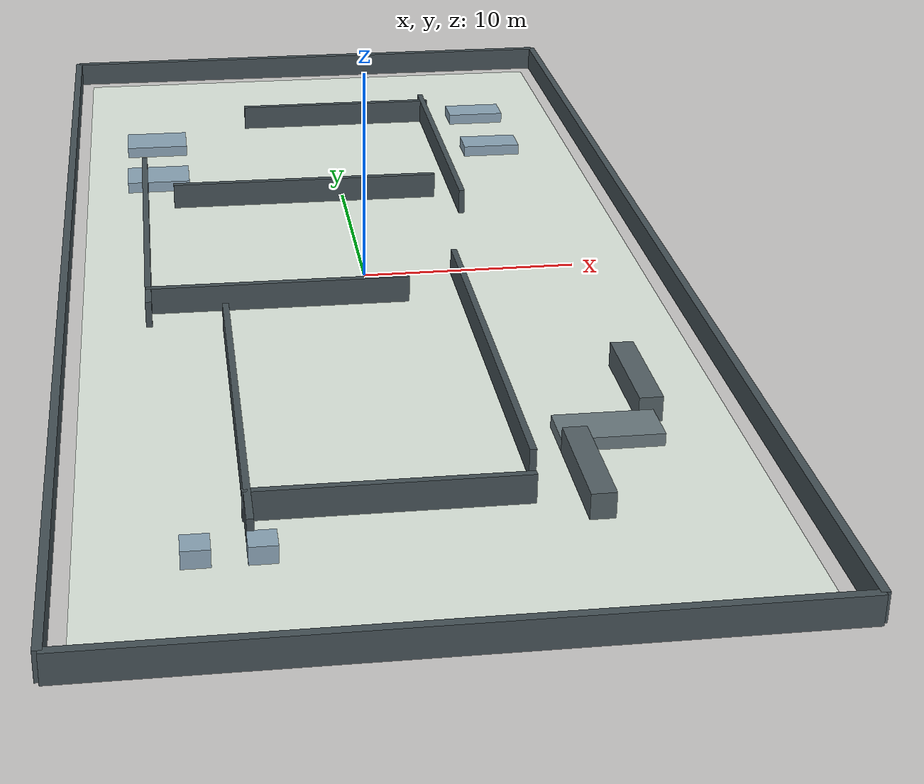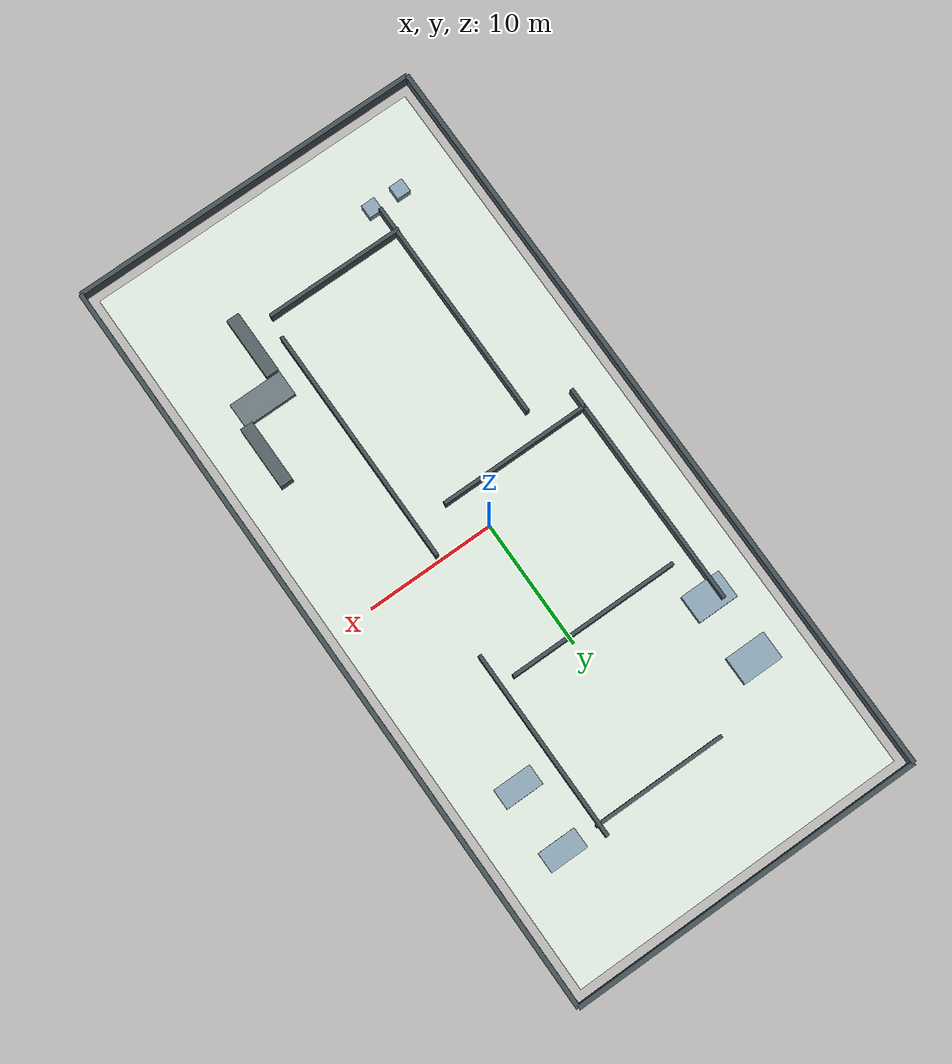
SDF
<?xml version="1.0" ?>
<sdf version="1.6">
  <world name="clinic_loop">
    <gravity>0 0 -9.8</gravity>
    <scene>
      <ambient>0.65 0.65 0.65 1</ambient>
      <background>0.78 0.84 0.88 1</background>
    </scene>
    <include>
      <uri>model://sun</uri>
    </include>
    <model name="clinic_loop_floor">
      <static>true</static>
      <pose>0.000 0.000 -0.025 0 0 0</pose>
      <link name="floor_link">
        <collision name="floor_collision">
          <geometry>
            <box><size>26.400 58.400 0.050</size></box>
          </geometry>
        </collision>
        <visual name="floor_visual">
          <geometry>
            <box><size>26.400 58.400 0.050</size></box>
          </geometry>
          <material><ambient>0.88 0.92 0.88 1</ambient><diffuse>0.88 0.92 0.88 1</diffuse></material>
        </visual>
      </link>
    </model>
    <model name="outer_north">
      <static>true</static>
      <pose>0.000 30.000 0.625 0 0 0</pose>
      <link name="outer_north_link">
        <collision name="outer_north_collision">
          <geometry>
            <box><size>28.000 0.350 1.250</size></box>
          </geometry>
        </collision>
        <visual name="outer_north_visual">
          <geometry>
            <box><size>28.000 0.350 1.250</size></box>
          </geometry>
          <material><ambient>0.27 0.32 0.34 1</ambient><diffuse>0.27 0.32 0.34 1</diffuse></material>
        </visual>
      </link>
    </model>
    <model name="outer_south">
      <static>true</static>
      <pose>0.000 -30.000 0.625 0 0 0</pose>
      <link name="outer_south_link">
        <collision name="outer_south_collision">
          <geometry>
            <box><size>28.000 0.350 1.250</size></box>
          </geometry>
        </collision>
        <visual name="outer_south_visual">
          <geometry>
            <box><size>28.000 0.350 1.250</size></box>
          </geometry>
          <material><ambient>0.27 0.32 0.34 1</ambient><diffuse>0.27 0.32 0.34 1</diffuse></material>
        </visual>
      </link>
    </model>
    <model name="outer_west">
      <static>true</static>
      <pose>-14.000 0.000 0.625 0 0 0</pose>
      <link name="outer_west_link">
        <collision name="outer_west_collision">
          <geometry>
            <box><size>0.350 60.000 1.250</size></box>
          </geometry>
        </collision>
        <visual name="outer_west_visual">
          <geometry>
            <box><size>0.350 60.000 1.250</size></box>
          </geometry>
          <material><ambient>0.27 0.32 0.34 1</ambient><diffuse>0.27 0.32 0.34 1</diffuse></material>
        </visual>
      </link>
    </model>
    <model name="outer_east">
      <static>true</static>
      <pose>14.000 0.000 0.625 0 0 0</pose>
      <link name="outer_east_link">
        <collision name="outer_east_collision">
          <geometry>
            <box><size>0.350 60.000 1.250</size></box>
          </geometry>
        </collision>
        <visual name="outer_east_visual">
          <geometry>
            <box><size>0.350 60.000 1.250</size></box>
          </geometry>
          <material><ambient>0.27 0.32 0.34 1</ambient><diffuse>0.27 0.32 0.34 1</diffuse></material>
        </visual>
      </link>
    </model>
    <model name="maze_wall_1">
      <static>true</static>
      <pose>-6.800 -14.000 0.625 0 0 0</pose>
      <link name="maze_wall_1_link">
        <collision name="maze_wall_1_collision">
          <geometry>
            <box><size>0.280 18.000 1.250</size></box>
          </geometry>
        </collision>
        <visual name="maze_wall_1_visual">
          <geometry>
            <box><size>0.280 18.000 1.250</size></box>
          </geometry>
          <material><ambient>0.27 0.32 0.34 1</ambient><diffuse>0.27 0.32 0.34 1</diffuse></material>
        </visual>
      </link>
    </model>
    <model name="maze_wall_2">
      <static>true</static>
      <pose>-1.500 -21.000 0.625 0 0 0</pose>
      <link name="maze_wall_2_link">
        <collision name="maze_wall_2_collision">
          <geometry>
            <box><size>11.000 0.280 1.250</size></box>
          </geometry>
        </collision>
        <visual name="maze_wall_2_visual">
          <geometry>
            <box><size>11.000 0.280 1.250</size></box>
          </geometry>
          <material><ambient>0.27 0.32 0.34 1</ambient><diffuse>0.27 0.32 0.34 1</diffuse></material>
        </visual>
      </link>
    </model>
    <model name="maze_wall_3">
      <static>true</static>
      <pose>4.200 -9.800 0.625 0 0 0</pose>
      <link name="maze_wall_3_link">
        <collision name="maze_wall_3_collision">
          <geometry>
            <box><size>0.280 19.000 1.250</size></box>
          </geometry>
        </collision>
        <visual name="maze_wall_3_visual">
          <geometry>
            <box><size>0.280 19.000 1.250</size></box>
          </geometry>
          <material><ambient>0.27 0.32 0.34 1</ambient><diffuse>0.27 0.32 0.34 1</diffuse></material>
        </visual>
      </link>
    </model>
    <model name="maze_wall_4">
      <static>true</static>
      <pose>-4.300 -3.000 0.625 0 0 0</pose>
      <link name="maze_wall_4_link">
        <collision name="maze_wall_4_collision">
          <geometry>
            <box><size>12.000 0.280 1.250</size></box>
          </geometry>
        </collision>
        <visual name="maze_wall_4_visual">
          <geometry>
            <box><size>12.000 0.280 1.250</size></box>
          </geometry>
          <material><ambient>0.27 0.32 0.34 1</ambient><diffuse>0.27 0.32 0.34 1</diffuse></material>
        </visual>
      </link>
    </model>
    <model name="maze_wall_5">
      <static>true</static>
      <pose>-10.200 4.500 0.625 0 0 0</pose>
      <link name="maze_wall_5_link">
        <collision name="maze_wall_5_collision">
          <geometry>
            <box><size>0.280 18.000 1.250</size></box>
          </geometry>
        </collision>
        <visual name="maze_wall_5_visual">
          <geometry>
            <box><size>0.280 18.000 1.250</size></box>
          </geometry>
          <material><ambient>0.27 0.32 0.34 1</ambient><diffuse>0.27 0.32 0.34 1</diffuse></material>
        </visual>
      </link>
    </model>
    <model name="maze_wall_6">
      <static>true</static>
      <pose>-2.000 9.500 0.625 0 0 0</pose>
      <link name="maze_wall_6_link">
        <collision name="maze_wall_6_collision">
          <geometry>
            <box><size>13.500 0.280 1.250</size></box>
          </geometry>
        </collision>
        <visual name="maze_wall_6_visual">
          <geometry>
            <box><size>13.500 0.280 1.250</size></box>
          </geometry>
          <material><ambient>0.27 0.32 0.34 1</ambient><diffuse>0.27 0.32 0.34 1</diffuse></material>
        </visual>
      </link>
    </model>
    <model name="maze_wall_7">
      <static>true</static>
      <pose>5.800 14.500 0.625 0 0 0</pose>
      <link name="maze_wall_7_link">
        <collision name="maze_wall_7_collision">
          <geometry>
            <box><size>0.280 15.000 1.250</size></box>
          </geometry>
        </collision>
        <visual name="maze_wall_7_visual">
          <geometry>
            <box><size>0.280 15.000 1.250</size></box>
          </geometry>
          <material><ambient>0.27 0.32 0.34 1</ambient><diffuse>0.27 0.32 0.34 1</diffuse></material>
        </visual>
      </link>
    </model>
    <model name="maze_wall_8">
      <static>true</static>
      <pose>0.800 21.000 0.625 0 0 0</pose>
      <link name="maze_wall_8_link">
        <collision name="maze_wall_8_collision">
          <geometry>
            <box><size>10.500 0.280 1.250</size></box>
          </geometry>
        </collision>
        <visual name="maze_wall_8_visual">
          <geometry>
            <box><size>10.500 0.280 1.250</size></box>
          </geometry>
          <material><ambient>0.27 0.32 0.34 1</ambient><diffuse>0.27 0.32 0.34 1</diffuse></material>
        </visual>
      </link>
    </model>
    <model name="maze_bed_1">
      <static>true</static>
      <pose>-9.500 18.000 0.275 0 0 0</pose>
      <link name="maze_bed_1_link">
        <collision name="maze_bed_1_collision">
          <geometry>
            <box><size>3.200 2.200 0.550</size></box>
          </geometry>
        </collision>
        <visual name="maze_bed_1_visual">
          <geometry>
            <box><size>3.200 2.200 0.550</size></box>
          </geometry>
          <material><ambient>0.55 0.65 0.72 1</ambient><diffuse>0.55 0.65 0.72 1</diffuse></material>
        </visual>
      </link>
    </model>
    <model name="maze_bed_2">
      <static>true</static>
      <pose>-9.500 12.800 0.275 0 0 0</pose>
      <link name="maze_bed_2_link">
        <collision name="maze_bed_2_collision">
          <geometry>
            <box><size>3.200 2.200 0.550</size></box>
          </geometry>
        </collision>
        <visual name="maze_bed_2_visual">
          <geometry>
            <box><size>3.200 2.200 0.550</size></box>
          </geometry>
          <material><ambient>0.55 0.65 0.72 1</ambient><diffuse>0.55 0.65 0.72 1</diffuse></material>
        </visual>
      </link>
    </model>
    <model name="maze_exam_bed_a">
      <static>true</static>
      <pose>8.800 15.800 0.275 0 0 0</pose>
      <link name="maze_exam_bed_a_link">
        <collision name="maze_exam_bed_a_collision">
          <geometry>
            <box><size>3.000 1.600 0.550</size></box>
          </geometry>
        </collision>
        <visual name="maze_exam_bed_a_visual">
          <geometry>
            <box><size>3.000 1.600 0.550</size></box>
          </geometry>
          <material><ambient>0.55 0.65 0.72 1</ambient><diffuse>0.55 0.65 0.72 1</diffuse></material>
        </visual>
      </link>
    </model>
    <model name="maze_exam_bed_b">
      <static>true</static>
      <pose>8.800 21.000 0.275 0 0 0</pose>
      <link name="maze_exam_bed_b_link">
        <collision name="maze_exam_bed_b_collision">
          <geometry>
            <box><size>3.000 1.600 0.550</size></box>
          </geometry>
        </collision>
        <visual name="maze_exam_bed_b_visual">
          <geometry>
            <box><size>3.000 1.600 0.550</size></box>
          </geometry>
          <material><ambient>0.55 0.65 0.72 1</ambient><diffuse>0.55 0.65 0.72 1</diffuse></material>
        </visual>
      </link>
    </model>
    <model name="maze_counter">
      <static>true</static>
      <pose>7.800 -16.500 0.275 0 0 0</pose>
      <link name="maze_counter_link">
        <collision name="maze_counter_collision">
          <geometry>
            <box><size>4.200 2.000 0.550</size></box>
          </geometry>
        </collision>
        <visual name="maze_counter_visual">
          <geometry>
            <box><size>4.200 2.000 0.550</size></box>
          </geometry>
          <material><ambient>0.42 0.48 0.50 1</ambient><diffuse>0.42 0.48 0.50 1</diffuse></material>
        </visual>
      </link>
    </model>
    <model name="maze_waiting_chair_a">
      <static>true</static>
      <pose>-8.800 -23.500 0.375 0 0 0</pose>
      <link name="maze_waiting_chair_a_link">
        <collision name="maze_waiting_chair_a_collision">
          <geometry>
            <box><size>1.100 1.100 0.750</size></box>
          </geometry>
        </collision>
        <visual name="maze_waiting_chair_a_visual">
          <geometry>
            <box><size>1.100 1.100 0.750</size></box>
          </geometry>
          <material><ambient>0.55 0.65 0.72 1</ambient><diffuse>0.55 0.65 0.72 1</diffuse></material>
        </visual>
      </link>
    </model>
    <model name="maze_waiting_chair_b">
      <static>true</static>
      <pose>-6.400 -23.500 0.375 0 0 0</pose>
      <link name="maze_waiting_chair_b_link">
        <collision name="maze_waiting_chair_b_collision">
          <geometry>
            <box><size>1.100 1.100 0.750</size></box>
          </geometry>
        </collision>
        <visual name="maze_waiting_chair_b_visual">
          <geometry>
            <box><size>1.100 1.100 0.750</size></box>
          </geometry>
          <material><ambient>0.55 0.65 0.72 1</ambient><diffuse>0.55 0.65 0.72 1</diffuse></material>
        </visual>
      </link>
    </model>
    <model name="maze_pharmacy_shelf_a">
      <static>true</static>
      <pose>9.800 -13.000 0.550 0 0 0</pose>
      <link name="maze_pharmacy_shelf_a_link">
        <collision name="maze_pharmacy_shelf_a_collision">
          <geometry>
            <box><size>1.000 5.000 1.100</size></box>
          </geometry>
        </collision>
        <visual name="maze_pharmacy_shelf_a_visual">
          <geometry>
            <box><size>1.000 5.000 1.100</size></box>
          </geometry>
          <material><ambient>0.33 0.38 0.40 1</ambient><diffuse>0.33 0.38 0.40 1</diffuse></material>
        </visual>
      </link>
    </model>
    <model name="maze_pharmacy_shelf_b">
      <static>true</static>
      <pose>6.200 -20.000 0.550 0 0 0</pose>
      <link name="maze_pharmacy_shelf_b_link">
        <collision name="maze_pharmacy_shelf_b_collision">
          <geometry>
            <box><size>1.000 5.000 1.100</size></box>
          </geometry>
        </collision>
        <visual name="maze_pharmacy_shelf_b_visual">
          <geometry>
            <box><size>1.000 5.000 1.100</size></box>
          </geometry>
          <material><ambient>0.33 0.38 0.40 1</ambient><diffuse>0.33 0.38 0.40 1</diffuse></material>
        </visual>
      </link>
    </model>
  </world>
</sdf>
